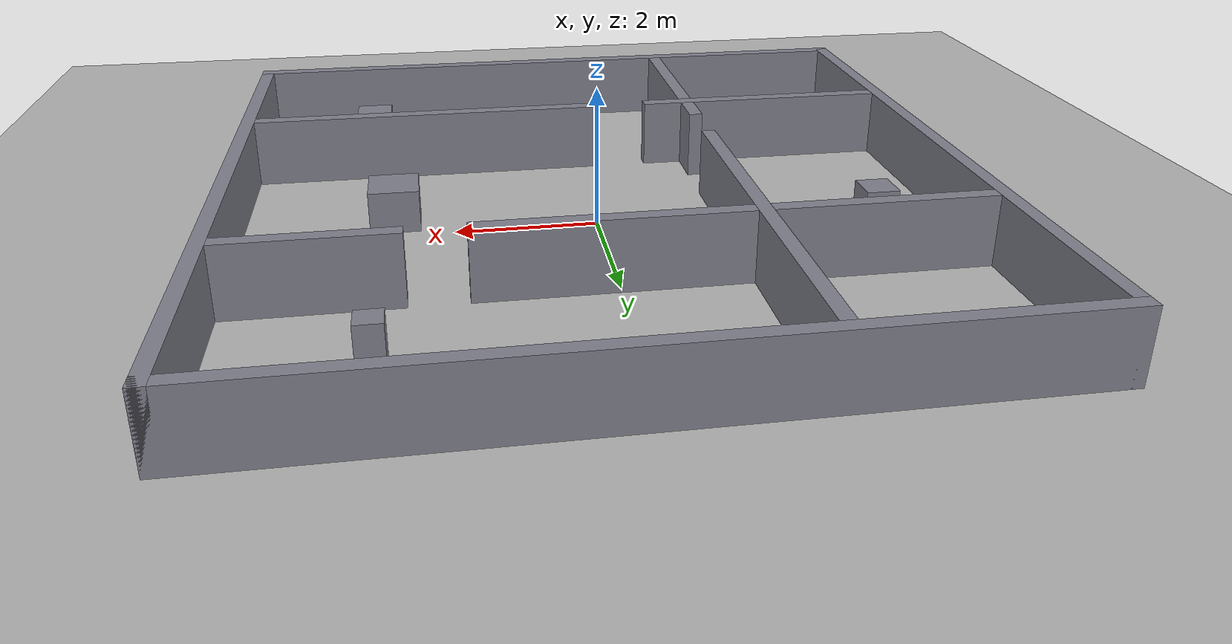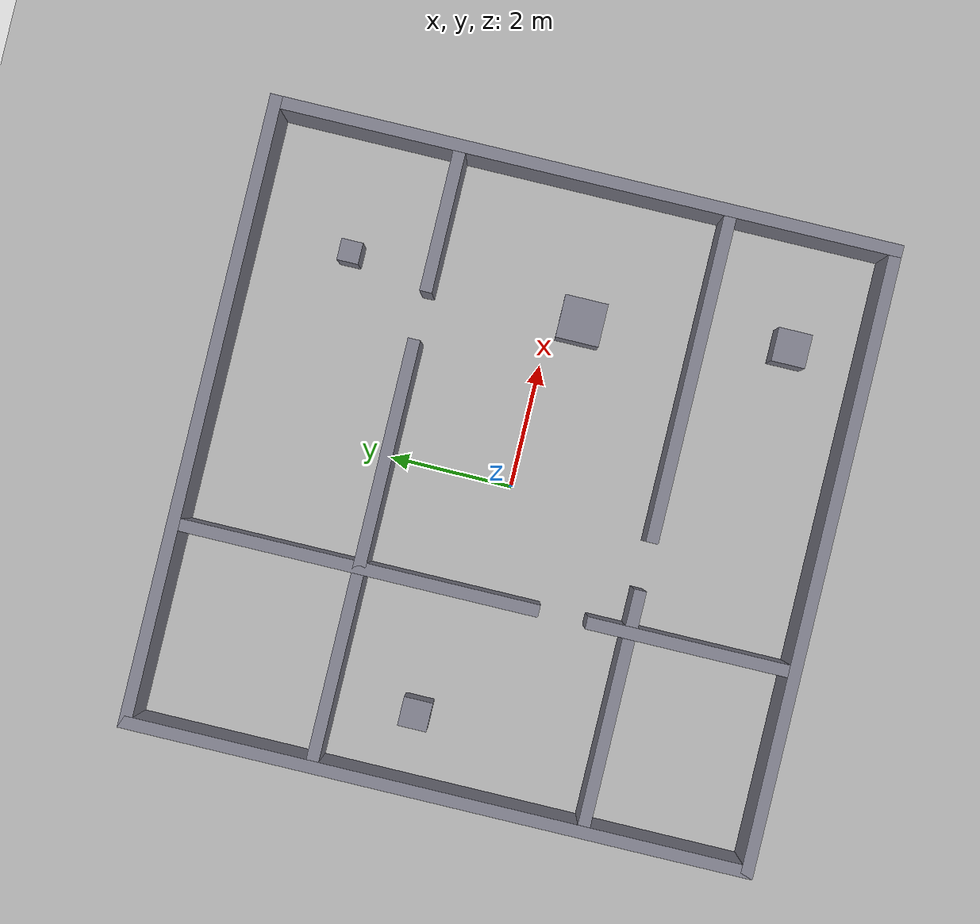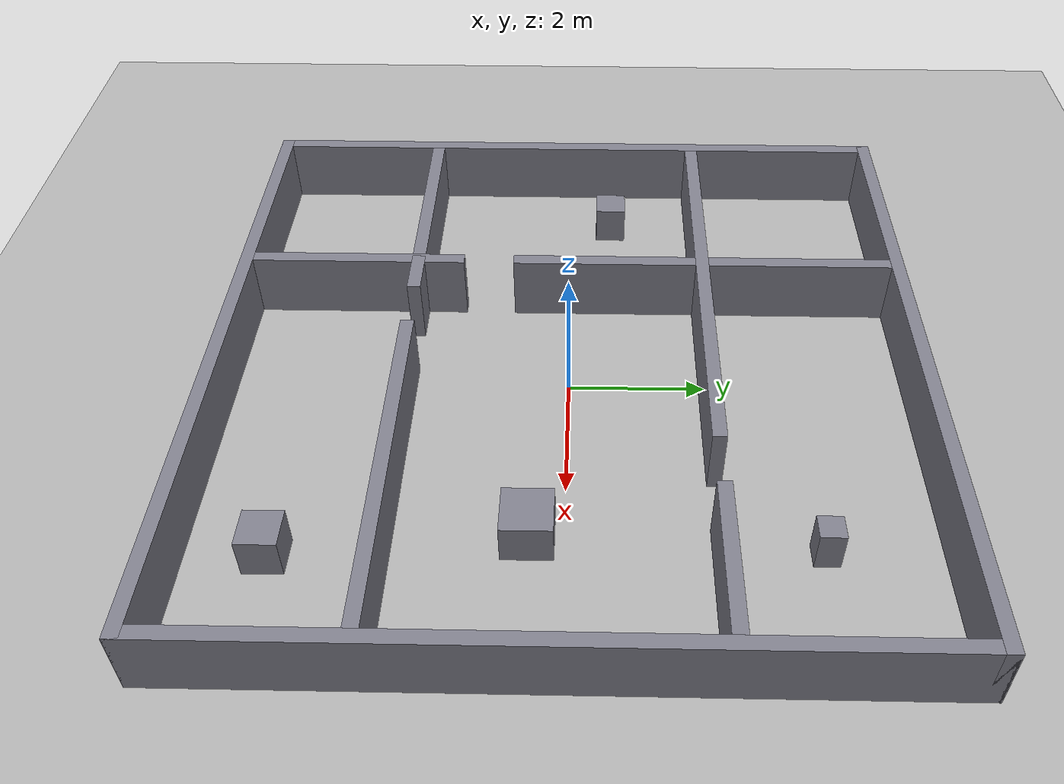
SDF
<?xml version="1.0"?>
<sdf version="1.10">
  <world name="scenario_19">
    <physics name="fast" type="ignored">
      <max_step_size>0.005</max_step_size>
      <real_time_factor>1.0</real_time_factor>
      <real_time_update_rate>200</real_time_update_rate>
    </physics>
    <plugin filename="gz-sim-physics-system" name="gz::sim::systems::Physics"/>
    <plugin filename="gz-sim-user-commands-system" name="gz::sim::systems::UserCommands"/>
    <plugin filename="gz-sim-scene-broadcaster-system" name="gz::sim::systems::SceneBroadcaster"/>
    <plugin filename="gz-sim-sensors-system" name="gz::sim::systems::Sensors">
      <render_engine>ogre2</render_engine>
    </plugin>
    <light type="directional" name="sun">
      <cast_shadows>false</cast_shadows>
      <pose>0 0 10 0 0 0</pose>
      <diffuse>0.9 0.9 0.9 1</diffuse>
      <direction>-0.5 0.2 -0.9</direction>
    </light>
    <model name="ground_plane">
      <static>true</static>
      <link name="link">
        <collision name="c"><geometry><plane><normal>0 0 1</normal><size>20 20</size></plane></geometry></collision>
        <visual name="v"><geometry><plane><normal>0 0 1</normal><size>20 20</size></plane></geometry>
          <material><ambient>0.7 0.7 0.7 1</ambient><diffuse>0.7 0.7 0.7 1</diffuse></material></visual>
      </link>
    </model>
    <model name="box_0">
      <static>true</static>
      <pose>0.0 5.0 0.5 0 0 0</pose>
      <link name="link">
        <collision name="c"><geometry><box><size>10.2 0.2 1.0</size></box></geometry></collision>
        <visual name="v"><geometry><box><size>10.2 0.2 1.0</size></box></geometry>
          <material><ambient>0.5 0.5 0.55 1</ambient><diffuse>0.5 0.5 0.55 1</diffuse></material></visual>
      </link>
    </model>
    <model name="box_1">
      <static>true</static>
      <pose>0.0 -5.0 0.5 0 0 0</pose>
      <link name="link">
        <collision name="c"><geometry><box><size>10.2 0.2 1.0</size></box></geometry></collision>
        <visual name="v"><geometry><box><size>10.2 0.2 1.0</size></box></geometry>
          <material><ambient>0.5 0.5 0.55 1</ambient><diffuse>0.5 0.5 0.55 1</diffuse></material></visual>
      </link>
    </model>
    <model name="box_2">
      <static>true</static>
      <pose>5.0 0.0 0.5 0 0 0</pose>
      <link name="link">
        <collision name="c"><geometry><box><size>0.2 10.2 1.0</size></box></geometry></collision>
        <visual name="v"><geometry><box><size>0.2 10.2 1.0</size></box></geometry>
          <material><ambient>0.5 0.5 0.55 1</ambient><diffuse>0.5 0.5 0.55 1</diffuse></material></visual>
      </link>
    </model>
    <model name="box_3">
      <static>true</static>
      <pose>-5.0 0.0 0.5 0 0 0</pose>
      <link name="link">
        <collision name="c"><geometry><box><size>0.2 10.2 1.0</size></box></geometry></collision>
        <visual name="v"><geometry><box><size>0.2 10.2 1.0</size></box></geometry>
          <material><ambient>0.5 0.5 0.55 1</ambient><diffuse>0.5 0.5 0.55 1</diffuse></material></visual>
      </link>
    </model>
    <model name="box_4">
      <static>true</static>
      <pose>-1.8 -3.2727210005609537 0.5 0 0 0</pose>
      <link name="link">
        <collision name="c"><geometry><box><size>0.2 3.2545579988780933 1.0</size></box></geometry></collision>
        <visual name="v"><geometry><box><size>0.2 3.2545579988780933 1.0</size></box></geometry>
          <material><ambient>0.5 0.5 0.55 1</ambient><diffuse>0.5 0.5 0.55 1</diffuse></material></visual>
      </link>
    </model>
    <model name="box_5">
      <static>true</static>
      <pose>-1.8 2.0072789994390465 0.5 0 0 0</pose>
      <link name="link">
        <collision name="c"><geometry><box><size>0.2 5.785442001121908 1.0</size></box></geometry></collision>
        <visual name="v"><geometry><box><size>0.2 5.785442001121908 1.0</size></box></geometry>
          <material><ambient>0.5 0.5 0.55 1</ambient><diffuse>0.5 0.5 0.55 1</diffuse></material></visual>
      </link>
    </model>
    <model name="box_6">
      <static>true</static>
      <pose>-3.004872614180301 -2.35 0.5 0 0 0</pose>
      <link name="link">
        <collision name="c"><geometry><box><size>3.790254771639398 0.2 1.0</size></box></geometry></collision>
        <visual name="v"><geometry><box><size>3.790254771639398 0.2 1.0</size></box></geometry>
          <material><ambient>0.5 0.5 0.55 1</ambient><diffuse>0.5 0.5 0.55 1</diffuse></material></visual>
      </link>
    </model>
    <model name="box_7">
      <static>true</static>
      <pose>2.275127385819699 -2.35 0.5 0 0 0</pose>
      <link name="link">
        <collision name="c"><geometry><box><size>5.249745228360602 0.2 1.0</size></box></geometry></collision>
        <visual name="v"><geometry><box><size>5.249745228360602 0.2 1.0</size></box></geometry>
          <material><ambient>0.5 0.5 0.55 1</ambient><diffuse>0.5 0.5 0.55 1</diffuse></material></visual>
      </link>
    </model>
    <model name="box_8">
      <static>true</static>
      <pose>-1.5085373749765094 2.01 0.5 0 0 0</pose>
      <link name="link">
        <collision name="c"><geometry><box><size>6.782925250046982 0.2 1.0</size></box></geometry></collision>
        <visual name="v"><geometry><box><size>6.782925250046982 0.2 1.0</size></box></geometry>
          <material><ambient>0.5 0.5 0.55 1</ambient><diffuse>0.5 0.5 0.55 1</diffuse></material></visual>
      </link>
    </model>
    <model name="box_9">
      <static>true</static>
      <pose>3.771462625023491 2.01 0.5 0 0 0</pose>
      <link name="link">
        <collision name="c"><geometry><box><size>2.257074749953019 0.2 1.0</size></box></geometry></collision>
        <visual name="v"><geometry><box><size>2.257074749953019 0.2 1.0</size></box></geometry>
          <material><ambient>0.5 0.5 0.55 1</ambient><diffuse>0.5 0.5 0.55 1</diffuse></material></visual>
      </link>
    </model>
    <model name="box_10">
      <static>true</static>
      <pose>3.18 -3.82 0.3 0 0 0</pose>
      <link name="link">
        <collision name="c"><geometry><box><size>0.55 0.55 0.6</size></box></geometry></collision>
        <visual name="v"><geometry><box><size>0.55 0.55 0.6</size></box></geometry>
          <material><ambient>0.5 0.5 0.55 1</ambient><diffuse>0.5 0.5 0.55 1</diffuse></material></visual>
      </link>
    </model>
    <model name="box_11">
      <static>true</static>
      <pose>3.03 3.36 0.3 0 0 0</pose>
      <link name="link">
        <collision name="c"><geometry><box><size>0.35 0.35 0.6</size></box></geometry></collision>
        <visual name="v"><geometry><box><size>0.35 0.35 0.6</size></box></geometry>
          <material><ambient>0.5 0.5 0.55 1</ambient><diffuse>0.5 0.5 0.55 1</diffuse></material></visual>
      </link>
    </model>
    <model name="box_12">
      <static>true</static>
      <pose>-3.87 0.63 0.3 0 0 0</pose>
      <link name="link">
        <collision name="c"><geometry><box><size>0.47 0.47 0.6</size></box></geometry></collision>
        <visual name="v"><geometry><box><size>0.47 0.47 0.6</size></box></geometry>
          <material><ambient>0.5 0.5 0.55 1</ambient><diffuse>0.5 0.5 0.55 1</diffuse></material></visual>
      </link>
    </model>
    <model name="box_13">
      <static>true</static>
      <pose>2.82 -0.48 0.3 0 0 0</pose>
      <link name="link">
        <collision name="c"><geometry><box><size>0.7 0.7 0.6</size></box></geometry></collision>
        <visual name="v"><geometry><box><size>0.7 0.7 0.6</size></box></geometry>
          <material><ambient>0.5 0.5 0.55 1</ambient><diffuse>0.5 0.5 0.55 1</diffuse></material></visual>
      </link>
    </model>
  </world>
</sdf>
